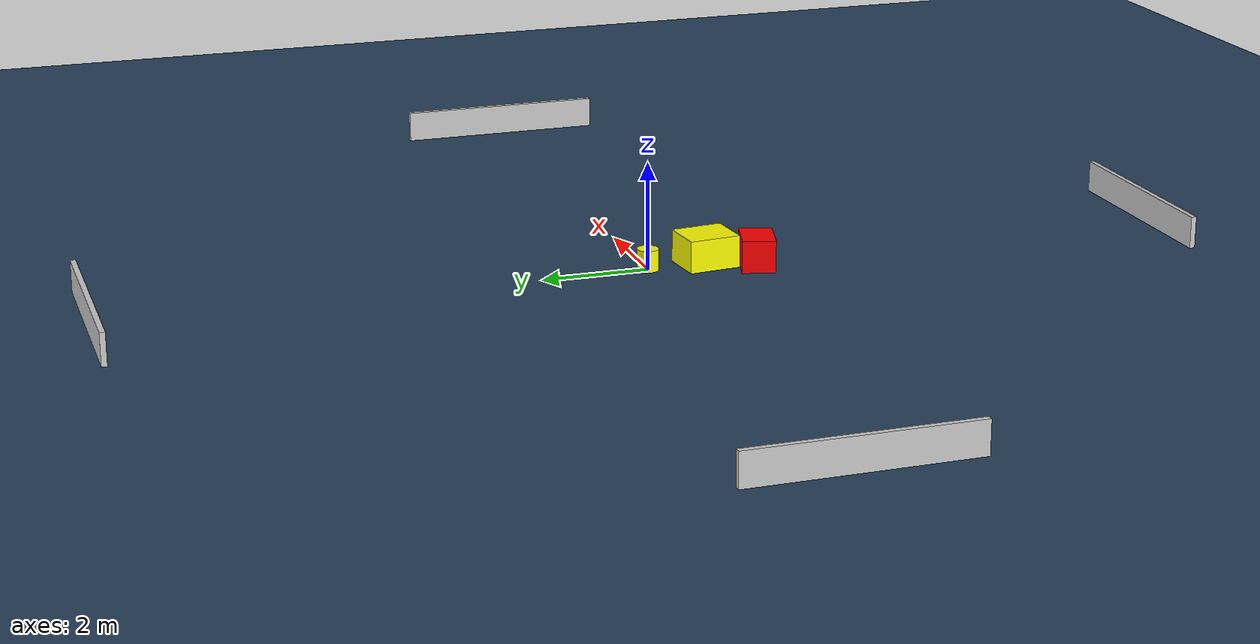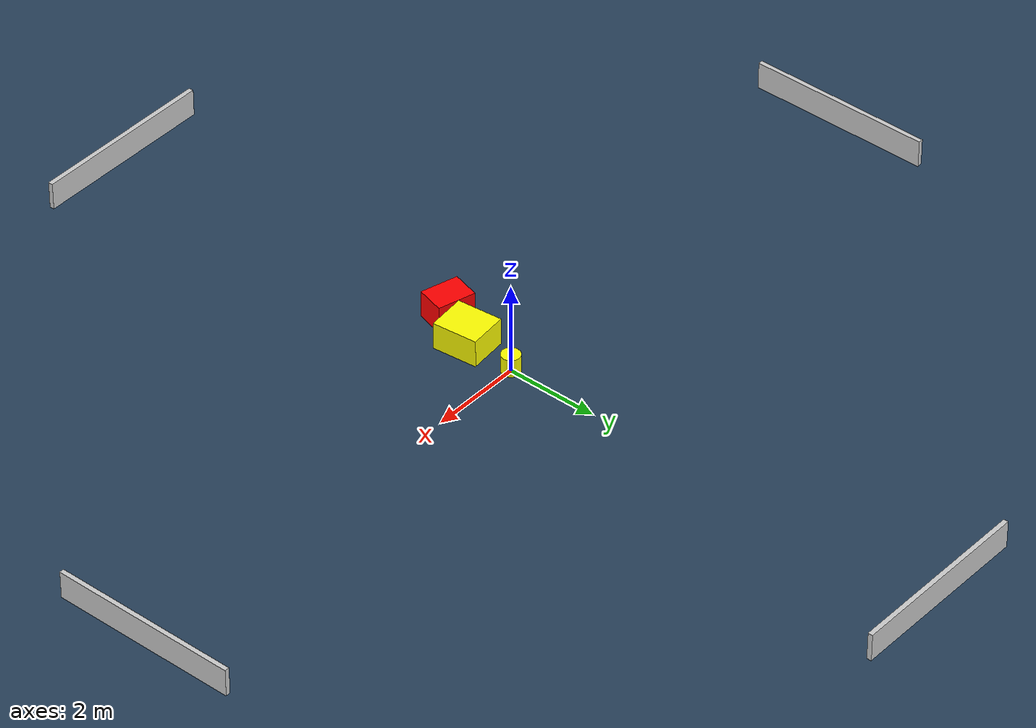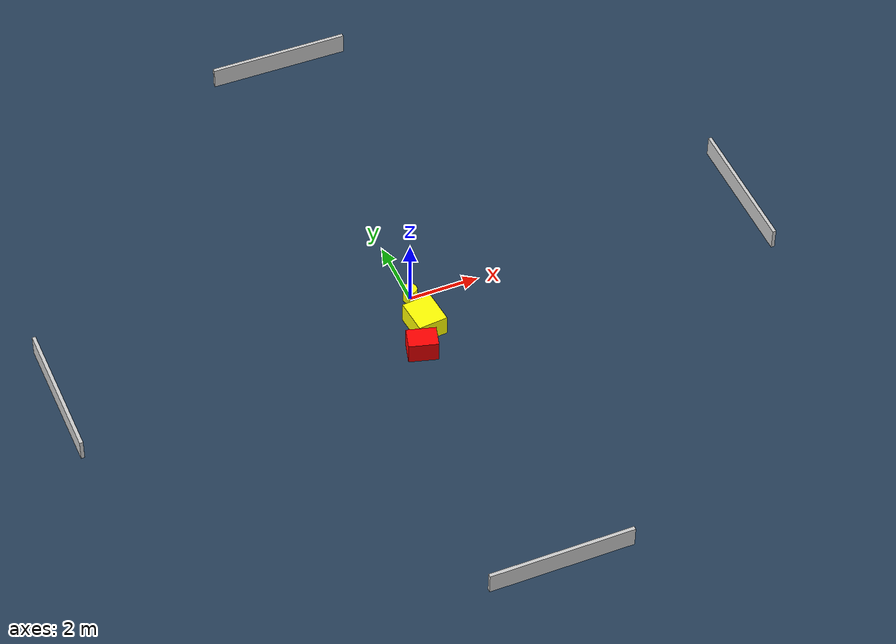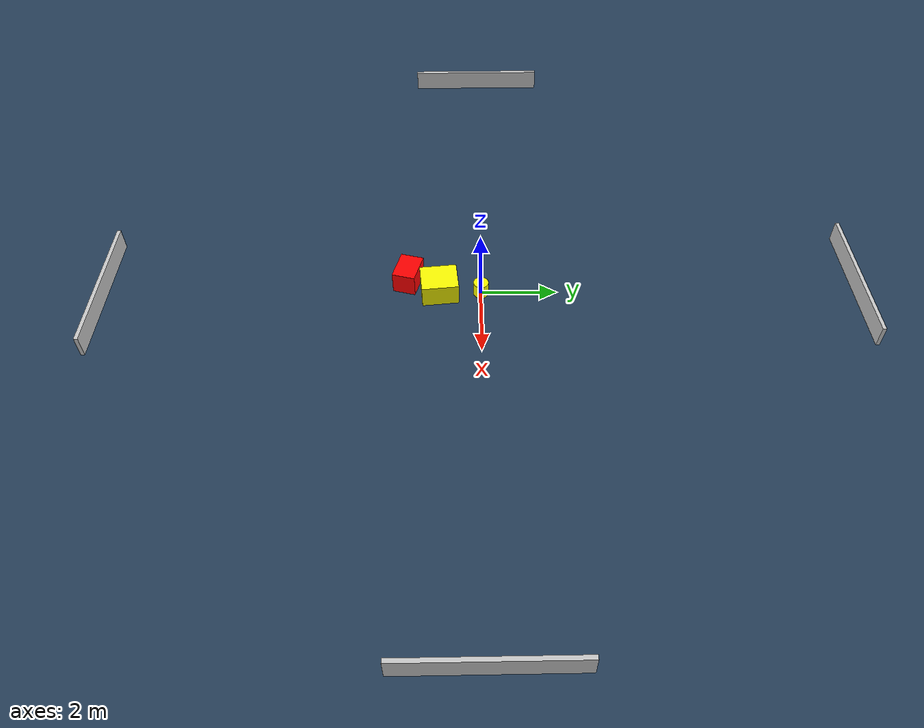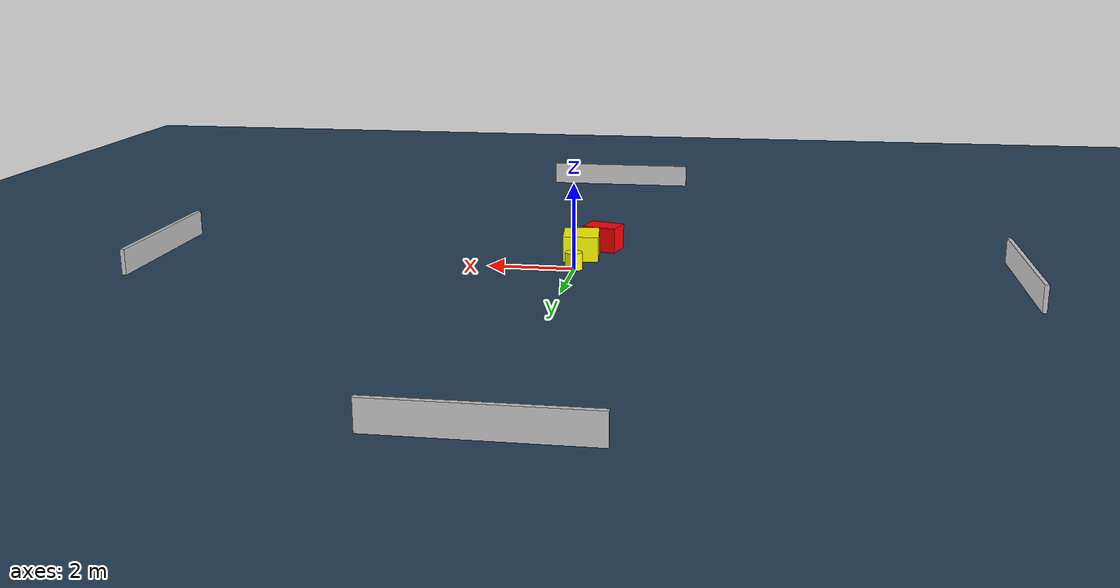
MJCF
<?xml version="1.0" ?>
<mujoco model="generated_environment">
  <option timestep="0.01" integrator="RK4" cone="elliptic"/>
  <default>
    <geom density="1"/>
  </default>
  <asset>
    <texture builtin="gradient" height="3072" name="skybox" rgb1="0.3 0.5 0.7" rgb2="0 0 0" type="skybox" width="512"/>
    <texture builtin="checker" height="300" name="groundplane" rgb1="0.2 0.3 0.4" rgb2="0.1 0.2 0.3" type="2d" width="300"/>
    <material name="groundplane" reflectance="0.2" texrepeat="5 5" texture="groundplane"/>
  </asset>
  <worldbody>
    <light dir="0 0 -1" directional="true" pos="0 0 1.5"/>
    <geom condim="3" friction="0.5 0.005 0.001" material="groundplane" name="floor" pos="0 0 0" size="0 0 0.05" type="plane"/>
    <body name="walls">
      <geom name="wall_1" condim="4" pos="-10.0 0.0 0.3" rgba="0.800000011920929 0.800000011920929 0.800000011920929 1.0" size="0.05 2.0 0.3" type="box"/>
      <geom name="wall_2" condim="4" pos="10.0 0.0 0.3" rgba="0.800000011920929 0.800000011920929 0.800000011920929 1.0" size="0.05 2.0 0.3" type="box"/>
      <geom name="wall_3" condim="4" pos="0.0 -10.0 0.3" rgba="0.800000011920929 0.800000011920929 0.800000011920929 1.0" size="2.0 0.05 0.3" type="box"/>
      <geom name="wall_4" condim="4" pos="0.0 10.0 0.3" rgba="0.800000011920929 0.800000011920929 0.800000011920929 1.0" size="2.0 0.05 0.3" type="box"/>
    </body>
    <body name="robot">
      <joint name="joint_x" type="slide" pos="0 0 0" axis="1 0 0"/>
      <joint name="joint_y" type="slide" pos="0 0 0" axis="0 1 0"/>
      <geom name="robot" type="cylinder" pos="0.0 0.0 0.2" size="0.2 0.2 0.0" mass="5.0" friction="1.0 0.005 0.0001" condim="4" rgba="1.0 1.0 0.0 1.0"/>
    </body>
    <body name="obstacle_1_movable">
      <geom name="obstacle_1_movable" condim="4" pos="-0.024532314338812086 -1.1016866294155048 0.3" euler="0 0 95.53964712529698" friction="0.0 0.005 0.001" rgba="1.0 1.0 0.0 1.0" size="0.48556374096954624 0.41816206971687514 0.3" type="box" mass="0.1"/>
      <joint type="free"/>
    </body>
    <body name="obstacle_2_static">
      <geom name="obstacle_2_static" condim="4" pos="-0.44410663486847957 -1.9405145889476623 0.3" euler="0 0 344.6069054323155" friction="0.0 0.005 0.001" rgba="1.0 0.0 0.0 1.0" size="0.41088689599474715 0.3064188100093861 0.3" type="box"/>
    </body>
  </worldbody>
  <actuator>
    <motor name="actuator_x" joint="joint_x" gear="1" ctrlrange="-1 1"/>
    <motor name="actuator_y" joint="joint_y" gear="1" ctrlrange="-1 1"/>
  </actuator>
</mujoco>
